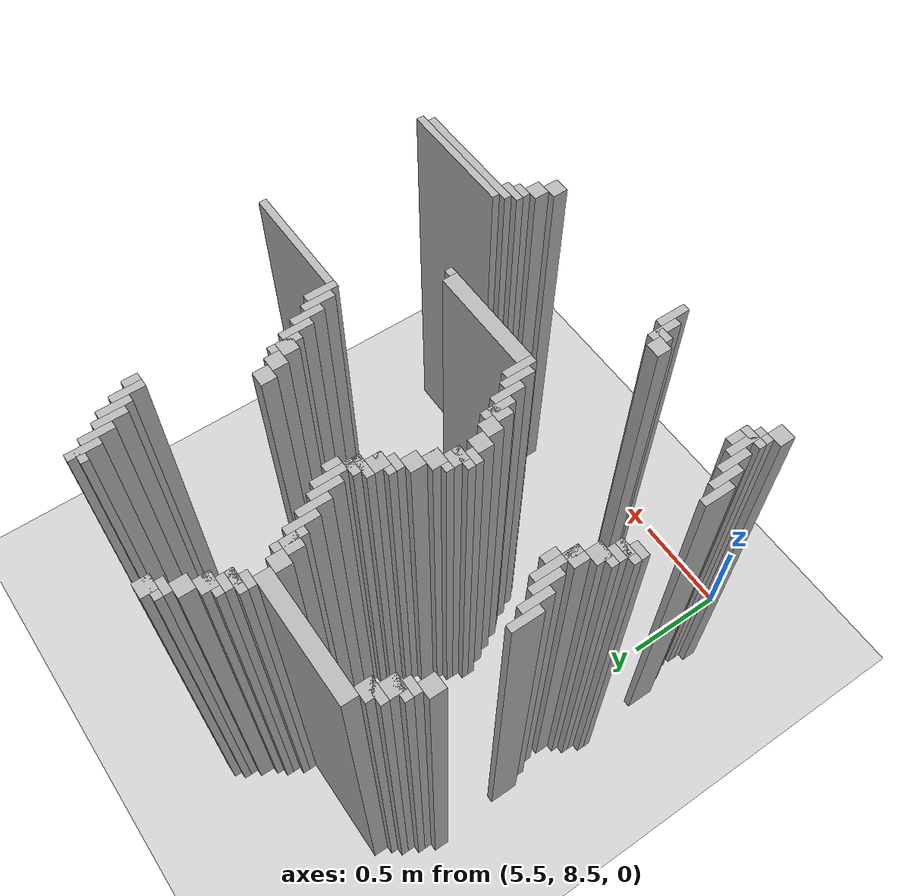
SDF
<sdf version="1.6">
 <world name="slam_world">
  <model name="ground_plane">
   <static>true</static>
   <link name="link">
    <collision name="collision">
     <geometry><plane><normal>0 0 1</normal><size>100 100</size></plane></geometry>
    </collision>
    <visual name="visual">
     <geometry><plane><normal>0 0 1</normal><size>100 100</size></plane></geometry>
     <material>
      <ambient>0.8 0.8 0.8 1</ambient>
      <diffuse>0.8 0.8 0.8 1</diffuse>
      <specular>0.8 0.8 0.8 1</specular>
     </material>
    </visual>
   </link>
  </model>
  <model name="wall_2178">
   <static>true</static>
   <pose>6.125290023201856 10.962877030162412 1.0 0 0 0</pose>
   <link name="link">
    <collision name="collision">
     <geometry><box><size>0.06960556844547564 0.06960556844547564 2.0</size></box></geometry>
    </collision>
    <visual name="visual">
     <geometry><box><size>0.06960556844547564 0.06960556844547564 2.0</size></box></geometry>
     <material><ambient>0.5 0.5 0.5 1</ambient><diffuse>0.7 0.7 0.7 1</diffuse></material>
    </visual>
   </link>
  </model>
  <model name="wall_2193">
   <static>true</static>
   <pose>6.107888631090487 10.945475638051043 1.0 0 0 0</pose>
   <link name="link">
    <collision name="collision">
     <geometry><box><size>0.10440835266821345 0.03480278422273782 2.0</size></box></geometry>
    </collision>
    <visual name="visual">
     <geometry><box><size>0.10440835266821345 0.03480278422273782 2.0</size></box></geometry>
     <material><ambient>0.5 0.5 0.5 1</ambient><diffuse>0.7 0.7 0.7 1</diffuse></material>
    </visual>
   </link>
  </model>
  <model name="wall_2194">
   <static>true</static>
   <pose>6.734338747099768 10.893271461716937 1.0 0 0 0</pose>
   <link name="link">
    <collision name="collision">
     <geometry><box><size>0.03480278422273782 0.13921113689095127 2.0</size></box></geometry>
    </collision>
    <visual name="visual">
     <geometry><box><size>0.03480278422273782 0.13921113689095127 2.0</size></box></geometry>
     <material><ambient>0.5 0.5 0.5 1</ambient><diffuse>0.7 0.7 0.7 1</diffuse></material>
    </visual>
   </link>
  </model>
  <model name="wall_2206">
   <static>true</static>
   <pose>6.090487238979118 10.910672853828306 1.0 0 0 0</pose>
   <link name="link">
    <collision name="collision">
     <geometry><box><size>0.06960556844547564 0.03480278422273782 2.0</size></box></geometry>
    </collision>
    <visual name="visual">
     <geometry><box><size>0.06960556844547564 0.03480278422273782 2.0</size></box></geometry>
     <material><ambient>0.5 0.5 0.5 1</ambient><diffuse>0.7 0.7 0.7 1</diffuse></material>
    </visual>
   </link>
  </model>
  <model name="wall_2207">
   <static>true</static>
   <pose>6.716937354988398 10.910672853828306 1.0 0 0 0</pose>
   <link name="link">
    <collision name="collision">
     <geometry><box><size>0.06960556844547564 0.03480278422273782 2.0</size></box></geometry>
    </collision>
    <visual name="visual">
     <geometry><box><size>0.06960556844547564 0.03480278422273782 2.0</size></box></geometry>
     <material><ambient>0.5 0.5 0.5 1</ambient><diffuse>0.7 0.7 0.7 1</diffuse></material>
    </visual>
   </link>
  </model>
  <model name="wall_2218">
   <static>true</static>
   <pose>6.05568445475638 10.8584686774942 1.0 0 0 0</pose>
   <link name="link">
    <collision name="collision">
     <geometry><box><size>0.06960556844547564 0.06960556844547564 2.0</size></box></geometry>
    </collision>
    <visual name="visual">
     <geometry><box><size>0.06960556844547564 0.06960556844547564 2.0</size></box></geometry>
     <material><ambient>0.5 0.5 0.5 1</ambient><diffuse>0.7 0.7 0.7 1</diffuse></material>
    </visual>
   </link>
  </model>
  <model name="wall_2219">
   <static>true</static>
   <pose>6.769141531322505 10.82366589327146 1.0 0 0 0</pose>
   <link name="link">
    <collision name="collision">
     <geometry><box><size>0.03480278422273782 0.13921113689095127 2.0</size></box></geometry>
    </collision>
    <visual name="visual">
     <geometry><box><size>0.03480278422273782 0.13921113689095127 2.0</size></box></geometry>
     <material><ambient>0.5 0.5 0.5 1</ambient><diffuse>0.7 0.7 0.7 1</diffuse></material>
    </visual>
   </link>
  </model>
  <model name="wall_2233">
   <static>true</static>
   <pose>6.020881670533642 10.788863109048723 1.0 0 0 0</pose>
   <link name="link">
    <collision name="collision">
     <geometry><box><size>0.06960556844547564 0.06960556844547564 2.0</size></box></geometry>
    </collision>
    <visual name="visual">
     <geometry><box><size>0.06960556844547564 0.06960556844547564 2.0</size></box></geometry>
     <material><ambient>0.5 0.5 0.5 1</ambient><diffuse>0.7 0.7 0.7 1</diffuse></material>
    </visual>
   </link>
  </model>
  <model name="wall_2234">
   <static>true</static>
   <pose>6.803944315545244 10.754060324825986 1.0 0 0 0</pose>
   <link name="link">
    <collision name="collision">
     <geometry><box><size>0.03480278422273782 0.13921113689095127 2.0</size></box></geometry>
    </collision>
    <visual name="visual">
     <geometry><box><size>0.03480278422273782 0.13921113689095127 2.0</size></box></geometry>
     <material><ambient>0.5 0.5 0.5 1</ambient><diffuse>0.7 0.7 0.7 1</diffuse></material>
    </visual>
   </link>
  </model>
  <model name="wall_2248">
   <static>true</static>
   <pose>6.003480278422273 10.771461716937354 1.0 0 0 0</pose>
   <link name="link">
    <collision name="collision">
     <geometry><box><size>0.10440835266821345 0.03480278422273782 2.0</size></box></geometry>
    </collision>
    <visual name="visual">
     <geometry><box><size>0.10440835266821345 0.03480278422273782 2.0</size></box></geometry>
     <material><ambient>0.5 0.5 0.5 1</ambient><diffuse>0.7 0.7 0.7 1</diffuse></material>
    </visual>
   </link>
  </model>
  <model name="wall_2249">
   <static>true</static>
   <pose>6.838747099767981 10.719257540603248 1.0 0 0 0</pose>
   <link name="link">
    <collision name="collision">
     <geometry><box><size>0.03480278422273782 0.13921113689095127 2.0</size></box></geometry>
    </collision>
    <visual name="visual">
     <geometry><box><size>0.03480278422273782 0.13921113689095127 2.0</size></box></geometry>
     <material><ambient>0.5 0.5 0.5 1</ambient><diffuse>0.7 0.7 0.7 1</diffuse></material>
    </visual>
   </link>
  </model>
  <model name="wall_2260">
   <static>true</static>
   <pose>5.986078886310905 10.719257540603248 1.0 0 0 0</pose>
   <link name="link">
    <collision name="collision">
     <geometry><box><size>0.06960556844547564 0.06960556844547564 2.0</size></box></geometry>
    </collision>
    <visual name="visual">
     <geometry><box><size>0.06960556844547564 0.06960556844547564 2.0</size></box></geometry>
     <material><ambient>0.5 0.5 0.5 1</ambient><diffuse>0.7 0.7 0.7 1</diffuse></material>
    </visual>
   </link>
  </model>
  <model name="wall_2270">
   <static>true</static>
   <pose>5.968677494199536 10.70185614849188 1.0 0 0 0</pose>
   <link name="link">
    <collision name="collision">
     <geometry><box><size>0.10440835266821345 0.03480278422273782 2.0</size></box></geometry>
    </collision>
    <visual name="visual">
     <geometry><box><size>0.10440835266821345 0.03480278422273782 2.0</size></box></geometry>
     <material><ambient>0.5 0.5 0.5 1</ambient><diffuse>0.7 0.7 0.7 1</diffuse></material>
    </visual>
   </link>
  </model>
  <model name="wall_2271">
   <static>true</static>
   <pose>6.8735498839907185 10.649651972157772 1.0 0 0 0</pose>
   <link name="link">
    <collision name="collision">
     <geometry><box><size>0.03480278422273782 0.13921113689095127 2.0</size></box></geometry>
    </collision>
    <visual name="visual">
     <geometry><box><size>0.03480278422273782 0.13921113689095127 2.0</size></box></geometry>
     <material><ambient>0.5 0.5 0.5 1</ambient><diffuse>0.7 0.7 0.7 1</diffuse></material>
    </visual>
   </link>
  </model>
  <model name="wall_2282">
   <static>true</static>
   <pose>5.951276102088166 10.66705336426914 1.0 0 0 0</pose>
   <link name="link">
    <collision name="collision">
     <geometry><box><size>0.06960556844547564 0.03480278422273782 2.0</size></box></geometry>
    </collision>
    <visual name="visual">
     <geometry><box><size>0.06960556844547564 0.03480278422273782 2.0</size></box></geometry>
     <material><ambient>0.5 0.5 0.5 1</ambient><diffuse>0.7 0.7 0.7 1</diffuse></material>
    </visual>
   </link>
  </model>
  <model name="wall_2292">
   <static>true</static>
   <pose>5.672853828306264 10.614849187935034 1.0 0 0 0</pose>
   <link name="link">
    <collision name="collision">
     <geometry><box><size>0.5568445475638051 0.06960556844547564 2.0</size></box></geometry>
    </collision>
    <visual name="visual">
     <geometry><box><size>0.5568445475638051 0.06960556844547564 2.0</size></box></geometry>
     <material><ambient>0.5 0.5 0.5 1</ambient><diffuse>0.7 0.7 0.7 1</diffuse></material>
    </visual>
   </link>
  </model>
  <model name="wall_2293">
   <static>true</static>
   <pose>6.908352668213457 10.614849187935034 1.0 0 0 0</pose>
   <link name="link">
    <collision name="collision">
     <geometry><box><size>0.03480278422273782 0.06960556844547564 2.0</size></box></geometry>
    </collision>
    <visual name="visual">
     <geometry><box><size>0.03480278422273782 0.06960556844547564 2.0</size></box></geometry>
     <material><ambient>0.5 0.5 0.5 1</ambient><diffuse>0.7 0.7 0.7 1</diffuse></material>
    </visual>
   </link>
  </model>
  <model name="wall_2307">
   <static>true</static>
   <pose>5.3944315545243615 10.54524361948956 1.0 0 0 0</pose>
   <link name="link">
    <collision name="collision">
     <geometry><box><size>0.06960556844547564 0.06960556844547564 2.0</size></box></geometry>
    </collision>
    <visual name="visual">
     <geometry><box><size>0.06960556844547564 0.06960556844547564 2.0</size></box></geometry>
     <material><ambient>0.5 0.5 0.5 1</ambient><diffuse>0.7 0.7 0.7 1</diffuse></material>
    </visual>
   </link>
  </model>
  <model name="wall_2308">
   <static>true</static>
   <pose>5.951276102088166 10.54524361948956 1.0 0 0 0</pose>
   <link name="link">
    <collision name="collision">
     <geometry><box><size>0.06960556844547564 0.06960556844547564 2.0</size></box></geometry>
    </collision>
    <visual name="visual">
     <geometry><box><size>0.06960556844547564 0.06960556844547564 2.0</size></box></geometry>
     <material><ambient>0.5 0.5 0.5 1</ambient><diffuse>0.7 0.7 0.7 1</diffuse></material>
    </visual>
   </link>
  </model>
  <model name="wall_2322">
   <static>true</static>
   <pose>5.377030162412993 10.52784222737819 1.0 0 0 0</pose>
   <link name="link">
    <collision name="collision">
     <geometry><box><size>0.10440835266821345 0.03480278422273782 2.0</size></box></geometry>
    </collision>
    <visual name="visual">
     <geometry><box><size>0.10440835266821345 0.03480278422273782 2.0</size></box></geometry>
     <material><ambient>0.5 0.5 0.5 1</ambient><diffuse>0.7 0.7 0.7 1</diffuse></material>
    </visual>
   </link>
  </model>
  <model name="wall_2323">
   <static>true</static>
   <pose>6.003480278422273 10.475638051044083 1.0 0 0 0</pose>
   <link name="link">
    <collision name="collision">
     <geometry><box><size>0.03480278422273782 0.13921113689095127 2.0</size></box></geometry>
    </collision>
    <visual name="visual">
     <geometry><box><size>0.03480278422273782 0.13921113689095127 2.0</size></box></geometry>
     <material><ambient>0.5 0.5 0.5 1</ambient><diffuse>0.7 0.7 0.7 1</diffuse></material>
    </visual>
   </link>
  </model>
  <model name="wall_2337">
   <static>true</static>
   <pose>5.359628770301624 10.475638051044083 1.0 0 0 0</pose>
   <link name="link">
    <collision name="collision">
     <geometry><box><size>0.06960556844547564 0.06960556844547564 2.0</size></box></geometry>
    </collision>
    <visual name="visual">
     <geometry><box><size>0.06960556844547564 0.06960556844547564 2.0</size></box></geometry>
     <material><ambient>0.5 0.5 0.5 1</ambient><diffuse>0.7 0.7 0.7 1</diffuse></material>
    </visual>
   </link>
  </model>
  <model name="wall_2338">
   <static>true</static>
   <pose>5.986078886310905 10.475638051044083 1.0 0 0 0</pose>
   <link name="link">
    <collision name="collision">
     <geometry><box><size>0.06960556844547564 0.06960556844547564 2.0</size></box></geometry>
    </collision>
    <visual name="visual">
     <geometry><box><size>0.06960556844547564 0.06960556844547564 2.0</size></box></geometry>
     <material><ambient>0.5 0.5 0.5 1</ambient><diffuse>0.7 0.7 0.7 1</diffuse></material>
    </visual>
   </link>
  </model>
  <model name="wall_2352">
   <static>true</static>
   <pose>5.342227378190255 10.458236658932714 1.0 0 0 0</pose>
   <link name="link">
    <collision name="collision">
     <geometry><box><size>0.10440835266821345 0.03480278422273782 2.0</size></box></geometry>
    </collision>
    <visual name="visual">
     <geometry><box><size>0.10440835266821345 0.03480278422273782 2.0</size></box></geometry>
     <material><ambient>0.5 0.5 0.5 1</ambient><diffuse>0.7 0.7 0.7 1</diffuse></material>
    </visual>
   </link>
  </model>
  <model name="wall_2353">
   <static>true</static>
   <pose>6.038283062645012 10.406032482598608 1.0 0 0 0</pose>
   <link name="link">
    <collision name="collision">
     <geometry><box><size>0.03480278422273782 0.13921113689095127 2.0</size></box></geometry>
    </collision>
    <visual name="visual">
     <geometry><box><size>0.03480278422273782 0.13921113689095127 2.0</size></box></geometry>
     <material><ambient>0.5 0.5 0.5 1</ambient><diffuse>0.7 0.7 0.7 1</diffuse></material>
    </visual>
   </link>
  </model>
  <model name="wall_2363">
   <static>true</static>
   <pose>5.324825986078886 10.423433874709977 1.0 0 0 0</pose>
   <link name="link">
    <collision name="collision">
     <geometry><box><size>0.06960556844547564 0.03480278422273782 2.0</size></box></geometry>
    </collision>
    <visual name="visual">
     <geometry><box><size>0.06960556844547564 0.03480278422273782 2.0</size></box></geometry>
     <material><ambient>0.5 0.5 0.5 1</ambient><diffuse>0.7 0.7 0.7 1</diffuse></material>
    </visual>
   </link>
  </model>
  <model name="wall_2372">
   <static>true</static>
   <pose>5.290023201856148 10.37122969837587 1.0 0 0 0</pose>
   <link name="link">
    <collision name="collision">
     <geometry><box><size>0.06960556844547564 0.06960556844547564 2.0</size></box></geometry>
    </collision>
    <visual name="visual">
     <geometry><box><size>0.06960556844547564 0.06960556844547564 2.0</size></box></geometry>
     <material><ambient>0.5 0.5 0.5 1</ambient><diffuse>0.7 0.7 0.7 1</diffuse></material>
    </visual>
   </link>
  </model>
  <model name="wall_2373">
   <static>true</static>
   <pose>6.073085846867749 10.336426914153131 1.0 0 0 0</pose>
   <link name="link">
    <collision name="collision">
     <geometry><box><size>0.03480278422273782 0.13921113689095127 2.0</size></box></geometry>
    </collision>
    <visual name="visual">
     <geometry><box><size>0.03480278422273782 0.13921113689095127 2.0</size></box></geometry>
     <material><ambient>0.5 0.5 0.5 1</ambient><diffuse>0.7 0.7 0.7 1</diffuse></material>
    </visual>
   </link>
  </model>
  <model name="wall_2388">
   <static>true</static>
   <pose>6.107888631090487 10.266821345707656 1.0 0 0 0</pose>
   <link name="link">
    <collision name="collision">
     <geometry><box><size>0.03480278422273782 0.13921113689095127 2.0</size></box></geometry>
    </collision>
    <visual name="visual">
     <geometry><box><size>0.03480278422273782 0.13921113689095127 2.0</size></box></geometry>
     <material><ambient>0.5 0.5 0.5 1</ambient><diffuse>0.7 0.7 0.7 1</diffuse></material>
    </visual>
   </link>
  </model>
  <model name="wall_2403">
   <static>true</static>
   <pose>6.142691415313225 10.19721577726218 1.0 0 0 0</pose>
   <link name="link">
    <collision name="collision">
     <geometry><box><size>0.03480278422273782 0.2088167053364269 2.0</size></box></geometry>
    </collision>
    <visual name="visual">
     <geometry><box><size>0.03480278422273782 0.2088167053364269 2.0</size></box></geometry>
     <material><ambient>0.5 0.5 0.5 1</ambient><diffuse>0.7 0.7 0.7 1</diffuse></material>
    </visual>
   </link>
  </model>
  <model name="wall_2423">
   <static>true</static>
   <pose>6.177494199535962 10.19721577726218 1.0 0 0 0</pose>
   <link name="link">
    <collision name="collision">
     <geometry><box><size>0.03480278422273782 0.06960556844547564 2.0</size></box></geometry>
    </collision>
    <visual name="visual">
     <geometry><box><size>0.03480278422273782 0.06960556844547564 2.0</size></box></geometry>
     <material><ambient>0.5 0.5 0.5 1</ambient><diffuse>0.7 0.7 0.7 1</diffuse></material>
    </visual>
   </link>
  </model>
  <model name="wall_2424">
   <static>true</static>
   <pose>6.647331786542924 10.19721577726218 1.0 0 0 0</pose>
   <link name="link">
    <collision name="collision">
     <geometry><box><size>0.06960556844547564 0.06960556844547564 2.0</size></box></geometry>
    </collision>
    <visual name="visual">
     <geometry><box><size>0.06960556844547564 0.06960556844547564 2.0</size></box></geometry>
     <material><ambient>0.5 0.5 0.5 1</ambient><diffuse>0.7 0.7 0.7 1</diffuse></material>
    </visual>
   </link>
  </model>
  <model name="wall_2443">
   <static>true</static>
   <pose>6.125290023201856 10.127610208816705 1.0 0 0 0</pose>
   <link name="link">
    <collision name="collision">
     <geometry><box><size>0.06960556844547564 0.06960556844547564 2.0</size></box></geometry>
    </collision>
    <visual name="visual">
     <geometry><box><size>0.06960556844547564 0.06960556844547564 2.0</size></box></geometry>
     <material><ambient>0.5 0.5 0.5 1</ambient><diffuse>0.7 0.7 0.7 1</diffuse></material>
    </visual>
   </link>
  </model>
  <model name="wall_2444">
   <static>true</static>
   <pose>6.682134570765661 10.127610208816705 1.0 0 0 0</pose>
   <link name="link">
    <collision name="collision">
     <geometry><box><size>0.06960556844547564 0.06960556844547564 2.0</size></box></geometry>
    </collision>
    <visual name="visual">
     <geometry><box><size>0.06960556844547564 0.06960556844547564 2.0</size></box></geometry>
     <material><ambient>0.5 0.5 0.5 1</ambient><diffuse>0.7 0.7 0.7 1</diffuse></material>
    </visual>
   </link>
  </model>
  <model name="wall_2457">
   <static>true</static>
   <pose>6.107888631090487 10.110208816705336 1.0 0 0 0</pose>
   <link name="link">
    <collision name="collision">
     <geometry><box><size>0.10440835266821345 0.03480278422273782 2.0</size></box></geometry>
    </collision>
    <visual name="visual">
     <geometry><box><size>0.10440835266821345 0.03480278422273782 2.0</size></box></geometry>
     <material><ambient>0.5 0.5 0.5 1</ambient><diffuse>0.7 0.7 0.7 1</diffuse></material>
    </visual>
   </link>
  </model>
  <model name="wall_2458">
   <static>true</static>
   <pose>6.734338747099768 10.058004640371228 1.0 0 0 0</pose>
   <link name="link">
    <collision name="collision">
     <geometry><box><size>0.03480278422273782 0.13921113689095127 2.0</size></box></geometry>
    </collision>
    <visual name="visual">
     <geometry><box><size>0.03480278422273782 0.13921113689095127 2.0</size></box></geometry>
     <material><ambient>0.5 0.5 0.5 1</ambient><diffuse>0.7 0.7 0.7 1</diffuse></material>
    </visual>
   </link>
  </model>
  <model name="wall_2471">
   <static>true</static>
   <pose>6.090487238979118 10.058004640371228 1.0 0 0 0</pose>
   <link name="link">
    <collision name="collision">
     <geometry><box><size>0.06960556844547564 0.06960556844547564 2.0</size></box></geometry>
    </collision>
    <visual name="visual">
     <geometry><box><size>0.06960556844547564 0.06960556844547564 2.0</size></box></geometry>
     <material><ambient>0.5 0.5 0.5 1</ambient><diffuse>0.7 0.7 0.7 1</diffuse></material>
    </visual>
   </link>
  </model>
  <model name="wall_2472">
   <static>true</static>
   <pose>6.716937354988398 10.058004640371228 1.0 0 0 0</pose>
   <link name="link">
    <collision name="collision">
     <geometry><box><size>0.06960556844547564 0.06960556844547564 2.0</size></box></geometry>
    </collision>
    <visual name="visual">
     <geometry><box><size>0.06960556844547564 0.06960556844547564 2.0</size></box></geometry>
     <material><ambient>0.5 0.5 0.5 1</ambient><diffuse>0.7 0.7 0.7 1</diffuse></material>
    </visual>
   </link>
  </model>
  <model name="wall_2484">
   <static>true</static>
   <pose>5.307424593967517 9.988399071925754 1.0 0 0 0</pose>
   <link name="link">
    <collision name="collision">
     <geometry><box><size>0.03480278422273782 0.13921113689095127 2.0</size></box></geometry>
    </collision>
    <visual name="visual">
     <geometry><box><size>0.03480278422273782 0.13921113689095127 2.0</size></box></geometry>
     <material><ambient>0.5 0.5 0.5 1</ambient><diffuse>0.7 0.7 0.7 1</diffuse></material>
    </visual>
   </link>
  </model>
  <model name="wall_2485">
   <static>true</static>
   <pose>6.073085846867749 10.04060324825986 1.0 0 0 0</pose>
   <link name="link">
    <collision name="collision">
     <geometry><box><size>0.10440835266821345 0.03480278422273782 2.0</size></box></geometry>
    </collision>
    <visual name="visual">
     <geometry><box><size>0.10440835266821345 0.03480278422273782 2.0</size></box></geometry>
     <material><ambient>0.5 0.5 0.5 1</ambient><diffuse>0.7 0.7 0.7 1</diffuse></material>
    </visual>
   </link>
  </model>
  <model name="wall_2486">
   <static>true</static>
   <pose>6.769141531322505 9.988399071925754 1.0 0 0 0</pose>
   <link name="link">
    <collision name="collision">
     <geometry><box><size>0.03480278422273782 0.13921113689095127 2.0</size></box></geometry>
    </collision>
    <visual name="visual">
     <geometry><box><size>0.03480278422273782 0.13921113689095127 2.0</size></box></geometry>
     <material><ambient>0.5 0.5 0.5 1</ambient><diffuse>0.7 0.7 0.7 1</diffuse></material>
    </visual>
   </link>
  </model>
  <model name="wall_2496">
   <static>true</static>
   <pose>6.05568445475638 10.005800464037122 1.0 0 0 0</pose>
   <link name="link">
    <collision name="collision">
     <geometry><box><size>0.06960556844547564 0.03480278422273782 2.0</size></box></geometry>
    </collision>
    <visual name="visual">
     <geometry><box><size>0.06960556844547564 0.03480278422273782 2.0</size></box></geometry>
     <material><ambient>0.5 0.5 0.5 1</ambient><diffuse>0.7 0.7 0.7 1</diffuse></material>
    </visual>
   </link>
  </model>
  <model name="wall_2507">
   <static>true</static>
   <pose>5.342227378190255 9.918793503480279 1.0 0 0 0</pose>
   <link name="link">
    <collision name="collision">
     <geometry><box><size>0.03480278422273782 0.13921113689095127 2.0</size></box></geometry>
    </collision>
    <visual name="visual">
     <geometry><box><size>0.03480278422273782 0.13921113689095127 2.0</size></box></geometry>
     <material><ambient>0.5 0.5 0.5 1</ambient><diffuse>0.7 0.7 0.7 1</diffuse></material>
    </visual>
   </link>
  </model>
  <model name="wall_2508">
   <static>true</static>
   <pose>6.020881670533642 9.953596287703016 1.0 0 0 0</pose>
   <link name="link">
    <collision name="collision">
     <geometry><box><size>0.06960556844547564 0.06960556844547564 2.0</size></box></geometry>
    </collision>
    <visual name="visual">
     <geometry><box><size>0.06960556844547564 0.06960556844547564 2.0</size></box></geometry>
     <material><ambient>0.5 0.5 0.5 1</ambient><diffuse>0.7 0.7 0.7 1</diffuse></material>
    </visual>
   </link>
  </model>
  <model name="wall_2509">
   <static>true</static>
   <pose>6.803944315545244 9.918793503480279 1.0 0 0 0</pose>
   <link name="link">
    <collision name="collision">
     <geometry><box><size>0.03480278422273782 0.13921113689095127 2.0</size></box></geometry>
    </collision>
    <visual name="visual">
     <geometry><box><size>0.03480278422273782 0.13921113689095127 2.0</size></box></geometry>
     <material><ambient>0.5 0.5 0.5 1</ambient><diffuse>0.7 0.7 0.7 1</diffuse></material>
    </visual>
   </link>
  </model>
  <model name="wall_2521">
   <static>true</static>
   <pose>5.377030162412993 9.849187935034802 1.0 0 0 0</pose>
   <link name="link">
    <collision name="collision">
     <geometry><box><size>0.03480278422273782 0.13921113689095127 2.0</size></box></geometry>
    </collision>
    <visual name="visual">
     <geometry><box><size>0.03480278422273782 0.13921113689095127 2.0</size></box></geometry>
     <material><ambient>0.5 0.5 0.5 1</ambient><diffuse>0.7 0.7 0.7 1</diffuse></material>
    </visual>
   </link>
  </model>
  <model name="wall_2522">
   <static>true</static>
   <pose>5.986078886310905 9.88399071925754 1.0 0 0 0</pose>
   <link name="link">
    <collision name="collision">
     <geometry><box><size>0.06960556844547564 0.06960556844547564 2.0</size></box></geometry>
    </collision>
    <visual name="visual">
     <geometry><box><size>0.06960556844547564 0.06960556844547564 2.0</size></box></geometry>
     <material><ambient>0.5 0.5 0.5 1</ambient><diffuse>0.7 0.7 0.7 1</diffuse></material>
    </visual>
   </link>
  </model>
  <model name="wall_2523">
   <static>true</static>
   <pose>6.838747099767981 9.849187935034802 1.0 0 0 0</pose>
   <link name="link">
    <collision name="collision">
     <geometry><box><size>0.03480278422273782 0.13921113689095127 2.0</size></box></geometry>
    </collision>
    <visual name="visual">
     <geometry><box><size>0.03480278422273782 0.13921113689095127 2.0</size></box></geometry>
     <material><ambient>0.5 0.5 0.5 1</ambient><diffuse>0.7 0.7 0.7 1</diffuse></material>
    </visual>
   </link>
  </model>
  <model name="wall_2535">
   <static>true</static>
   <pose>5.41183294663573 9.779582366589327 1.0 0 0 0</pose>
   <link name="link">
    <collision name="collision">
     <geometry><box><size>0.03480278422273782 0.2088167053364269 2.0</size></box></geometry>
    </collision>
    <visual name="visual">
     <geometry><box><size>0.03480278422273782 0.2088167053364269 2.0</size></box></geometry>
     <material><ambient>0.5 0.5 0.5 1</ambient><diffuse>0.7 0.7 0.7 1</diffuse></material>
    </visual>
   </link>
  </model>
  <model name="wall_2536">
   <static>true</static>
   <pose>5.968677494199536 9.86658932714617 1.0 0 0 0</pose>
   <link name="link">
    <collision name="collision">
     <geometry><box><size>0.10440835266821345 0.03480278422273782 2.0</size></box></geometry>
    </collision>
    <visual name="visual">
     <geometry><box><size>0.10440835266821345 0.03480278422273782 2.0</size></box></geometry>
     <material><ambient>0.5 0.5 0.5 1</ambient><diffuse>0.7 0.7 0.7 1</diffuse></material>
    </visual>
   </link>
  </model>
  <model name="wall_2537">
   <static>true</static>
   <pose>6.8735498839907185 9.814385150812065 1.0 0 0 0</pose>
   <link name="link">
    <collision name="collision">
     <geometry><box><size>0.03480278422273782 0.13921113689095127 2.0</size></box></geometry>
    </collision>
    <visual name="visual">
     <geometry><box><size>0.03480278422273782 0.13921113689095127 2.0</size></box></geometry>
     <material><ambient>0.5 0.5 0.5 1</ambient><diffuse>0.7 0.7 0.7 1</diffuse></material>
    </visual>
   </link>
  </model>
  <model name="wall_2547">
   <static>true</static>
   <pose>5.951276102088166 9.814385150812065 1.0 0 0 0</pose>
   <link name="link">
    <collision name="collision">
     <geometry><box><size>0.06960556844547564 0.06960556844547564 2.0</size></box></geometry>
    </collision>
    <visual name="visual">
     <geometry><box><size>0.06960556844547564 0.06960556844547564 2.0</size></box></geometry>
     <material><ambient>0.5 0.5 0.5 1</ambient><diffuse>0.7 0.7 0.7 1</diffuse></material>
    </visual>
   </link>
  </model>
  <model name="wall_2558">
   <static>true</static>
   <pose>5.4466357308584685 9.779582366589327 1.0 0 0 0</pose>
   <link name="link">
    <collision name="collision">
     <geometry><box><size>0.03480278422273782 0.06960556844547564 2.0</size></box></geometry>
    </collision>
    <visual name="visual">
     <geometry><box><size>0.03480278422273782 0.06960556844547564 2.0</size></box></geometry>
     <material><ambient>0.5 0.5 0.5 1</ambient><diffuse>0.7 0.7 0.7 1</diffuse></material>
    </visual>
   </link>
  </model>
  <model name="wall_2559">
   <static>true</static>
   <pose>5.933874709976798 9.796983758700696 1.0 0 0 0</pose>
   <link name="link">
    <collision name="collision">
     <geometry><box><size>0.10440835266821345 0.03480278422273782 2.0</size></box></geometry>
    </collision>
    <visual name="visual">
     <geometry><box><size>0.10440835266821345 0.03480278422273782 2.0</size></box></geometry>
     <material><ambient>0.5 0.5 0.5 1</ambient><diffuse>0.7 0.7 0.7 1</diffuse></material>
    </visual>
   </link>
  </model>
  <model name="wall_2568">
   <static>true</static>
   <pose>5.916473317865429 9.762180974477959 1.0 0 0 0</pose>
   <link name="link">
    <collision name="collision">
     <geometry><box><size>0.06960556844547564 0.03480278422273782 2.0</size></box></geometry>
    </collision>
    <visual name="visual">
     <geometry><box><size>0.06960556844547564 0.03480278422273782 2.0</size></box></geometry>
     <material><ambient>0.5 0.5 0.5 1</ambient><diffuse>0.7 0.7 0.7 1</diffuse></material>
    </visual>
   </link>
  </model>
  <model name="wall_2569">
   <static>true</static>
   <pose>7.151972157772621 9.762180974477959 1.0 0 0 0</pose>
   <link name="link">
    <collision name="collision">
     <geometry><box><size>0.5220417633410672 0.03480278422273782 2.0</size></box></geometry>
    </collision>
    <visual name="visual">
     <geometry><box><size>0.5220417633410672 0.03480278422273782 2.0</size></box></geometry>
     <material><ambient>0.5 0.5 0.5 1</ambient><diffuse>0.7 0.7 0.7 1</diffuse></material>
    </visual>
   </link>
  </model>
  <model name="wall_2580">
   <static>true</static>
   <pose>5.3944315545243615 9.70997679814385 1.0 0 0 0</pose>
   <link name="link">
    <collision name="collision">
     <geometry><box><size>0.06960556844547564 0.06960556844547564 2.0</size></box></geometry>
    </collision>
    <visual name="visual">
     <geometry><box><size>0.06960556844547564 0.06960556844547564 2.0</size></box></geometry>
     <material><ambient>0.5 0.5 0.5 1</ambient><diffuse>0.7 0.7 0.7 1</diffuse></material>
    </visual>
   </link>
  </model>
  <model name="wall_2581">
   <static>true</static>
   <pose>5.951276102088166 9.70997679814385 1.0 0 0 0</pose>
   <link name="link">
    <collision name="collision">
     <geometry><box><size>0.06960556844547564 0.06960556844547564 2.0</size></box></geometry>
    </collision>
    <visual name="visual">
     <geometry><box><size>0.06960556844547564 0.06960556844547564 2.0</size></box></geometry>
     <material><ambient>0.5 0.5 0.5 1</ambient><diffuse>0.7 0.7 0.7 1</diffuse></material>
    </visual>
   </link>
  </model>
  <model name="wall_2605">
   <static>true</static>
   <pose>5.359628770301624 9.640371229698376 1.0 0 0 0</pose>
   <link name="link">
    <collision name="collision">
     <geometry><box><size>0.06960556844547564 0.06960556844547564 2.0</size></box></geometry>
    </collision>
    <visual name="visual">
     <geometry><box><size>0.06960556844547564 0.06960556844547564 2.0</size></box></geometry>
     <material><ambient>0.5 0.5 0.5 1</ambient><diffuse>0.7 0.7 0.7 1</diffuse></material>
    </visual>
   </link>
  </model>
  <model name="wall_2606">
   <static>true</static>
   <pose>5.986078886310905 9.640371229698376 1.0 0 0 0</pose>
   <link name="link">
    <collision name="collision">
     <geometry><box><size>0.06960556844547564 0.06960556844547564 2.0</size></box></geometry>
    </collision>
    <visual name="visual">
     <geometry><box><size>0.06960556844547564 0.06960556844547564 2.0</size></box></geometry>
     <material><ambient>0.5 0.5 0.5 1</ambient><diffuse>0.7 0.7 0.7 1</diffuse></material>
    </visual>
   </link>
  </model>
  <model name="wall_2619">
   <static>true</static>
   <pose>5.342227378190255 9.622969837587007 1.0 0 0 0</pose>
   <link name="link">
    <collision name="collision">
     <geometry><box><size>0.10440835266821345 0.03480278422273782 2.0</size></box></geometry>
    </collision>
    <visual name="visual">
     <geometry><box><size>0.10440835266821345 0.03480278422273782 2.0</size></box></geometry>
     <material><ambient>0.5 0.5 0.5 1</ambient><diffuse>0.7 0.7 0.7 1</diffuse></material>
    </visual>
   </link>
  </model>
  <model name="wall_2620">
   <static>true</static>
   <pose>6.038283062645012 9.5707656612529 1.0 0 0 0</pose>
   <link name="link">
    <collision name="collision">
     <geometry><box><size>0.03480278422273782 0.13921113689095127 2.0</size></box></geometry>
    </collision>
    <visual name="visual">
     <geometry><box><size>0.03480278422273782 0.13921113689095127 2.0</size></box></geometry>
     <material><ambient>0.5 0.5 0.5 1</ambient><diffuse>0.7 0.7 0.7 1</diffuse></material>
    </visual>
   </link>
  </model>
  <model name="wall_2633">
   <static>true</static>
   <pose>5.324825986078886 9.5707656612529 1.0 0 0 0</pose>
   <link name="link">
    <collision name="collision">
     <geometry><box><size>0.06960556844547564 0.06960556844547564 2.0</size></box></geometry>
    </collision>
    <visual name="visual">
     <geometry><box><size>0.06960556844547564 0.06960556844547564 2.0</size></box></geometry>
     <material><ambient>0.5 0.5 0.5 1</ambient><diffuse>0.7 0.7 0.7 1</diffuse></material>
    </visual>
   </link>
  </model>
  <model name="wall_2634">
   <static>true</static>
   <pose>6.020881670533642 9.5707656612529 1.0 0 0 0</pose>
   <link name="link">
    <collision name="collision">
     <geometry><box><size>0.06960556844547564 0.06960556844547564 2.0</size></box></geometry>
    </collision>
    <visual name="visual">
     <geometry><box><size>0.06960556844547564 0.06960556844547564 2.0</size></box></geometry>
     <material><ambient>0.5 0.5 0.5 1</ambient><diffuse>0.7 0.7 0.7 1</diffuse></material>
    </visual>
   </link>
  </model>
  <model name="wall_2647">
   <static>true</static>
   <pose>5.307424593967517 9.55336426914153 1.0 0 0 0</pose>
   <link name="link">
    <collision name="collision">
     <geometry><box><size>0.10440835266821345 0.03480278422273782 2.0</size></box></geometry>
    </collision>
    <visual name="visual">
     <geometry><box><size>0.10440835266821345 0.03480278422273782 2.0</size></box></geometry>
     <material><ambient>0.5 0.5 0.5 1</ambient><diffuse>0.7 0.7 0.7 1</diffuse></material>
    </visual>
   </link>
  </model>
  <model name="wall_2648">
   <static>true</static>
   <pose>6.073085846867749 9.501160092807424 1.0 0 0 0</pose>
   <link name="link">
    <collision name="collision">
     <geometry><box><size>0.03480278422273782 0.13921113689095127 2.0</size></box></geometry>
    </collision>
    <visual name="visual">
     <geometry><box><size>0.03480278422273782 0.13921113689095127 2.0</size></box></geometry>
     <material><ambient>0.5 0.5 0.5 1</ambient><diffuse>0.7 0.7 0.7 1</diffuse></material>
    </visual>
   </link>
  </model>
  <model name="wall_2658">
   <static>true</static>
   <pose>5.290023201856148 9.518561484918793 1.0 0 0 0</pose>
   <link name="link">
    <collision name="collision">
     <geometry><box><size>0.06960556844547564 0.03480278422273782 2.0</size></box></geometry>
    </collision>
    <visual name="visual">
     <geometry><box><size>0.06960556844547564 0.03480278422273782 2.0</size></box></geometry>
     <material><ambient>0.5 0.5 0.5 1</ambient><diffuse>0.7 0.7 0.7 1</diffuse></material>
    </visual>
   </link>
  </model>
  <model name="wall_2667">
   <static>true</static>
   <pose>6.107888631090487 9.431554524361948 1.0 0 0 0</pose>
   <link name="link">
    <collision name="collision">
     <geometry><box><size>0.03480278422273782 0.13921113689095127 2.0</size></box></geometry>
    </collision>
    <visual name="visual">
     <geometry><box><size>0.03480278422273782 0.13921113689095127 2.0</size></box></geometry>
     <material><ambient>0.5 0.5 0.5 1</ambient><diffuse>0.7 0.7 0.7 1</diffuse></material>
    </visual>
   </link>
  </model>
  <model name="wall_2681">
   <static>true</static>
   <pose>6.142691415313225 9.39675174013921 1.0 0 0 0</pose>
   <link name="link">
    <collision name="collision">
     <geometry><box><size>0.03480278422273782 0.13921113689095127 2.0</size></box></geometry>
    </collision>
    <visual name="visual">
     <geometry><box><size>0.03480278422273782 0.13921113689095127 2.0</size></box></geometry>
     <material><ambient>0.5 0.5 0.5 1</ambient><diffuse>0.7 0.7 0.7 1</diffuse></material>
    </visual>
   </link>
  </model>
  <model name="wall_2699">
   <static>true</static>
   <pose>6.403712296983758 9.361948955916473 1.0 0 0 0</pose>
   <link name="link">
    <collision name="collision">
     <geometry><box><size>0.4872389791183295 0.06960556844547564 2.0</size></box></geometry>
    </collision>
    <visual name="visual">
     <geometry><box><size>0.4872389791183295 0.06960556844547564 2.0</size></box></geometry>
     <material><ambient>0.5 0.5 0.5 1</ambient><diffuse>0.7 0.7 0.7 1</diffuse></material>
    </visual>
   </link>
  </model>
  <model name="wall_2711">
   <static>true</static>
   <pose>6.664733178654292 9.344547563805104 1.0 0 0 0</pose>
   <link name="link">
    <collision name="collision">
     <geometry><box><size>0.03480278422273782 0.03480278422273782 2.0</size></box></geometry>
    </collision>
    <visual name="visual">
     <geometry><box><size>0.03480278422273782 0.03480278422273782 2.0</size></box></geometry>
     <material><ambient>0.5 0.5 0.5 1</ambient><diffuse>0.7 0.7 0.7 1</diffuse></material>
    </visual>
   </link>
  </model>
  <model name="wall_2768">
   <static>true</static>
   <pose>5.307424593967517 9.153132250580047 1.0 0 0 0</pose>
   <link name="link">
    <collision name="collision">
     <geometry><box><size>0.03480278422273782 0.13921113689095127 2.0</size></box></geometry>
    </collision>
    <visual name="visual">
     <geometry><box><size>0.03480278422273782 0.13921113689095127 2.0</size></box></geometry>
     <material><ambient>0.5 0.5 0.5 1</ambient><diffuse>0.7 0.7 0.7 1</diffuse></material>
    </visual>
   </link>
  </model>
  <model name="wall_2796">
   <static>true</static>
   <pose>5.342227378190255 9.08352668213457 1.0 0 0 0</pose>
   <link name="link">
    <collision name="collision">
     <geometry><box><size>0.03480278422273782 0.13921113689095127 2.0</size></box></geometry>
    </collision>
    <visual name="visual">
     <geometry><box><size>0.03480278422273782 0.13921113689095127 2.0</size></box></geometry>
     <material><ambient>0.5 0.5 0.5 1</ambient><diffuse>0.7 0.7 0.7 1</diffuse></material>
    </visual>
   </link>
  </model>
  <model name="wall_2821">
   <static>true</static>
   <pose>5.377030162412993 9.013921113689095 1.0 0 0 0</pose>
   <link name="link">
    <collision name="collision">
     <geometry><box><size>0.03480278422273782 0.13921113689095127 2.0</size></box></geometry>
    </collision>
    <visual name="visual">
     <geometry><box><size>0.03480278422273782 0.13921113689095127 2.0</size></box></geometry>
     <material><ambient>0.5 0.5 0.5 1</ambient><diffuse>0.7 0.7 0.7 1</diffuse></material>
    </visual>
   </link>
  </model>
  <model name="wall_2837">
   <static>true</static>
   <pose>5.41183294663573 8.92691415313225 1.0 0 0 0</pose>
   <link name="link">
    <collision name="collision">
     <geometry><box><size>0.03480278422273782 0.17401392111368907 2.0</size></box></geometry>
    </collision>
    <visual name="visual">
     <geometry><box><size>0.03480278422273782 0.17401392111368907 2.0</size></box></geometry>
     <material><ambient>0.5 0.5 0.5 1</ambient><diffuse>0.7 0.7 0.7 1</diffuse></material>
    </visual>
   </link>
  </model>
  <model name="wall_2853">
   <static>true</static>
   <pose>5.4466357308584685 8.92691415313225 1.0 0 0 0</pose>
   <link name="link">
    <collision name="collision">
     <geometry><box><size>0.03480278422273782 0.10440835266821345 2.0</size></box></geometry>
    </collision>
    <visual name="visual">
     <geometry><box><size>0.03480278422273782 0.10440835266821345 2.0</size></box></geometry>
     <material><ambient>0.5 0.5 0.5 1</ambient><diffuse>0.7 0.7 0.7 1</diffuse></material>
    </visual>
   </link>
  </model>
  <model name="wall_2854">
   <static>true</static>
   <pose>7.16937354988399 8.961716937354987 1.0 0 0 0</pose>
   <link name="link">
    <collision name="collision">
     <geometry><box><size>0.5568445475638051 0.03480278422273782 2.0</size></box></geometry>
    </collision>
    <visual name="visual">
     <geometry><box><size>0.5568445475638051 0.03480278422273782 2.0</size></box></geometry>
     <material><ambient>0.5 0.5 0.5 1</ambient><diffuse>0.7 0.7 0.7 1</diffuse></material>
    </visual>
   </link>
  </model>
  <model name="wall_2867">
   <static>true</static>
   <pose>5.916473317865429 8.909512761020881 1.0 0 0 0</pose>
   <link name="link">
    <collision name="collision">
     <geometry><box><size>0.06960556844547564 0.06960556844547564 2.0</size></box></geometry>
    </collision>
    <visual name="visual">
     <geometry><box><size>0.06960556844547564 0.06960556844547564 2.0</size></box></geometry>
     <material><ambient>0.5 0.5 0.5 1</ambient><diffuse>0.7 0.7 0.7 1</diffuse></material>
    </visual>
   </link>
  </model>
  <model name="wall_2868">
   <static>true</static>
   <pose>7.134570765661253 8.92691415313225 1.0 0 0 0</pose>
   <link name="link">
    <collision name="collision">
     <geometry><box><size>0.5568445475638051 0.03480278422273782 2.0</size></box></geometry>
    </collision>
    <visual name="visual">
     <geometry><box><size>0.5568445475638051 0.03480278422273782 2.0</size></box></geometry>
     <material><ambient>0.5 0.5 0.5 1</ambient><diffuse>0.7 0.7 0.7 1</diffuse></material>
    </visual>
   </link>
  </model>
  <model name="wall_2880">
   <static>true</static>
   <pose>5.41183294663573 8.892111368909513 1.0 0 0 0</pose>
   <link name="link">
    <collision name="collision">
     <geometry><box><size>0.10440835266821345 0.03480278422273782 2.0</size></box></geometry>
    </collision>
    <visual name="visual">
     <geometry><box><size>0.10440835266821345 0.03480278422273782 2.0</size></box></geometry>
     <material><ambient>0.5 0.5 0.5 1</ambient><diffuse>0.7 0.7 0.7 1</diffuse></material>
    </visual>
   </link>
  </model>
  <model name="wall_2881">
   <static>true</static>
   <pose>5.968677494199536 8.839907192575406 1.0 0 0 0</pose>
   <link name="link">
    <collision name="collision">
     <geometry><box><size>0.03480278422273782 0.13921113689095127 2.0</size></box></geometry>
    </collision>
    <visual name="visual">
     <geometry><box><size>0.03480278422273782 0.13921113689095127 2.0</size></box></geometry>
     <material><ambient>0.5 0.5 0.5 1</ambient><diffuse>0.7 0.7 0.7 1</diffuse></material>
    </visual>
   </link>
  </model>
  <model name="wall_2882">
   <static>true</static>
   <pose>6.8735498839907185 8.892111368909513 1.0 0 0 0</pose>
   <link name="link">
    <collision name="collision">
     <geometry><box><size>0.10440835266821345 0.03480278422273782 2.0</size></box></geometry>
    </collision>
    <visual name="visual">
     <geometry><box><size>0.10440835266821345 0.03480278422273782 2.0</size></box></geometry>
     <material><ambient>0.5 0.5 0.5 1</ambient><diffuse>0.7 0.7 0.7 1</diffuse></material>
    </visual>
   </link>
  </model>
  <model name="wall_2896">
   <static>true</static>
   <pose>5.3944315545243615 8.857308584686775 1.0 0 0 0</pose>
   <link name="link">
    <collision name="collision">
     <geometry><box><size>0.06960556844547564 0.03480278422273782 2.0</size></box></geometry>
    </collision>
    <visual name="visual">
     <geometry><box><size>0.06960556844547564 0.03480278422273782 2.0</size></box></geometry>
     <material><ambient>0.5 0.5 0.5 1</ambient><diffuse>0.7 0.7 0.7 1</diffuse></material>
    </visual>
   </link>
  </model>
  <model name="wall_2897">
   <static>true</static>
   <pose>5.951276102088166 8.857308584686775 1.0 0 0 0</pose>
   <link name="link">
    <collision name="collision">
     <geometry><box><size>0.06960556844547564 0.03480278422273782 2.0</size></box></geometry>
    </collision>
    <visual name="visual">
     <geometry><box><size>0.06960556844547564 0.03480278422273782 2.0</size></box></geometry>
     <material><ambient>0.5 0.5 0.5 1</ambient><diffuse>0.7 0.7 0.7 1</diffuse></material>
    </visual>
   </link>
  </model>
  <model name="wall_2898">
   <static>true</static>
   <pose>6.85614849187935 8.857308584686775 1.0 0 0 0</pose>
   <link name="link">
    <collision name="collision">
     <geometry><box><size>0.06960556844547564 0.03480278422273782 2.0</size></box></geometry>
    </collision>
    <visual name="visual">
     <geometry><box><size>0.06960556844547564 0.03480278422273782 2.0</size></box></geometry>
     <material><ambient>0.5 0.5 0.5 1</ambient><diffuse>0.7 0.7 0.7 1</diffuse></material>
    </visual>
   </link>
  </model>
  <model name="wall_2911">
   <static>true</static>
   <pose>5.359628770301624 8.805104408352667 1.0 0 0 0</pose>
   <link name="link">
    <collision name="collision">
     <geometry><box><size>0.06960556844547564 0.06960556844547564 2.0</size></box></geometry>
    </collision>
    <visual name="visual">
     <geometry><box><size>0.06960556844547564 0.06960556844547564 2.0</size></box></geometry>
     <material><ambient>0.5 0.5 0.5 1</ambient><diffuse>0.7 0.7 0.7 1</diffuse></material>
    </visual>
   </link>
  </model>
  <model name="wall_2912">
   <static>true</static>
   <pose>6.003480278422273 8.77030162412993 1.0 0 0 0</pose>
   <link name="link">
    <collision name="collision">
     <geometry><box><size>0.03480278422273782 0.13921113689095127 2.0</size></box></geometry>
    </collision>
    <visual name="visual">
     <geometry><box><size>0.03480278422273782 0.13921113689095127 2.0</size></box></geometry>
     <material><ambient>0.5 0.5 0.5 1</ambient><diffuse>0.7 0.7 0.7 1</diffuse></material>
    </visual>
   </link>
  </model>
  <model name="wall_2913">
   <static>true</static>
   <pose>6.821345707656612 8.805104408352667 1.0 0 0 0</pose>
   <link name="link">
    <collision name="collision">
     <geometry><box><size>0.06960556844547564 0.06960556844547564 2.0</size></box></geometry>
    </collision>
    <visual name="visual">
     <geometry><box><size>0.06960556844547564 0.06960556844547564 2.0</size></box></geometry>
     <material><ambient>0.5 0.5 0.5 1</ambient><diffuse>0.7 0.7 0.7 1</diffuse></material>
    </visual>
   </link>
  </model>
  <model name="wall_2928">
   <static>true</static>
   <pose>6.786542923433874 8.735498839907192 1.0 0 0 0</pose>
   <link name="link">
    <collision name="collision">
     <geometry><box><size>0.06960556844547564 0.06960556844547564 2.0</size></box></geometry>
    </collision>
    <visual name="visual">
     <geometry><box><size>0.06960556844547564 0.06960556844547564 2.0</size></box></geometry>
     <material><ambient>0.5 0.5 0.5 1</ambient><diffuse>0.7 0.7 0.7 1</diffuse></material>
    </visual>
   </link>
  </model>
 </world>
</sdf>
